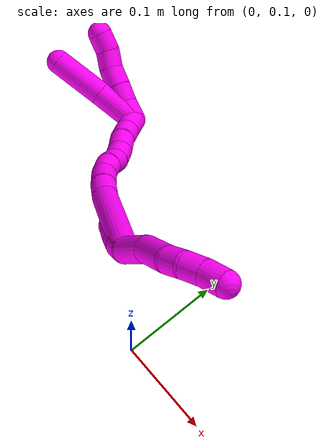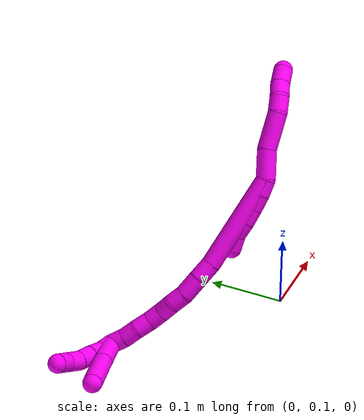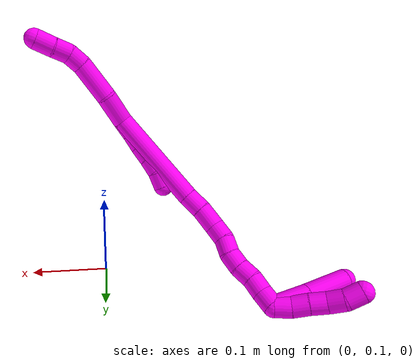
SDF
<sdf version="1.7">
 <world name="default">
  <model name="10">
   <static>0</static>
   <link name="10">
    <collision name="collision-cylinder-e_1_2_8">
     <pose>-0.007656 -0.013312 0.011618 0.853222 -0.408871 -0.18792</pose>
     <geometry><cylinder><radius>0.0125</radius><length>0.038512</length></cylinder></geometry>
     <surface>
      <friction><ode><mu>1.16</mu><mu2>1.16</mu2><slip1>0</slip1><slip2>0</slip2></ode></friction>
      <contact><ode><kp>1e+06</kp><kd>1</kd><max_vel>0</max_vel><min_depth>0.001</min_depth></ode></contact>
     </surface>
    </collision>
    <visual name="visual-cylinder-e_1_2_8">
     <pose>-0.007656 -0.013312 0.011618 0.853222 -0.408871 -0.18792</pose>
     <geometry><cylinder><radius>0.0125</radius><length>0.038512</length></cylinder></geometry>
     <material><ambient>1 0 0.964706 1</ambient></material>
    </visual>
    <collision name="collision-cylinder-e_2_8_9">
     <pose>-0.020607 -0.04155 0.041467 0.686089 -0.221093 -0.079249</pose>
     <geometry><cylinder><radius>0.0125</radius><length>0.048299</length></cylinder></geometry>
     <surface>
      <friction><ode><mu>1.16</mu><mu2>1.16</mu2><slip1>0</slip1><slip2>0</slip2></ode></friction>
      <contact><ode><kp>1e+06</kp><kd>1</kd><max_vel>0</max_vel><min_depth>0.001</min_depth></ode></contact>
     </surface>
    </collision>
    <visual name="visual-cylinder-e_2_8_9">
     <pose>-0.020607 -0.04155 0.041467 0.686089 -0.221093 -0.079249</pose>
     <geometry><cylinder><radius>0.0125</radius><length>0.048299</length></cylinder></geometry>
     <material><ambient>1 0 0.964706 1</ambient></material>
    </visual>
    <collision name="collision-cylinder-e_3_9_10">
     <pose>-0.030943 -0.061287 0.067201 0.570057 -0.514619 -0.1539</pose>
     <geometry><cylinder><radius>0.0125</radius><length>0.020477</length></cylinder></geometry>
     <surface>
      <friction><ode><mu>1.16</mu><mu2>1.16</mu2><slip1>0</slip1><slip2>0</slip2></ode></friction>
      <contact><ode><kp>1e+06</kp><kd>1</kd><max_vel>0</max_vel><min_depth>0.001</min_depth></ode></contact>
     </surface>
    </collision>
    <visual name="visual-cylinder-e_3_9_10">
     <pose>-0.030943 -0.061287 0.067201 0.570057 -0.514619 -0.1539</pose>
     <geometry><cylinder><radius>0.0125</radius><length>0.020477</length></cylinder></geometry>
     <material><ambient>1 0 0.964706 1</ambient></material>
    </visual>
    <collision name="collision-cylinder-e_4_10_11">
     <pose>-0.042735 -0.067901 0.081891 0.245935 -0.738966 -0.095653</pose>
     <geometry><cylinder><radius>0.0125</radius><length>0.020052</length></cylinder></geometry>
     <surface>
      <friction><ode><mu>1.16</mu><mu2>1.16</mu2><slip1>0</slip1><slip2>0</slip2></ode></friction>
      <contact><ode><kp>1e+06</kp><kd>1</kd><max_vel>0</max_vel><min_depth>0.001</min_depth></ode></contact>
     </surface>
    </collision>
    <visual name="visual-cylinder-e_4_10_11">
     <pose>-0.042735 -0.067901 0.081891 0.245935 -0.738966 -0.095653</pose>
     <geometry><cylinder><radius>0.0125</radius><length>0.020052</length></cylinder></geometry>
     <material><ambient>1 0 0.964706 1</ambient></material>
    </visual>
    <collision name="collision-cylinder-e_5_11_6">
     <pose>-0.055856 -0.071959 0.098175 0.242944 -0.596934 -0.075078</pose>
     <geometry><cylinder><radius>0.0125</radius><length>0.02266</length></cylinder></geometry>
     <surface>
      <friction><ode><mu>1.16</mu><mu2>1.16</mu2><slip1>0</slip1><slip2>0</slip2></ode></friction>
      <contact><ode><kp>1e+06</kp><kd>1</kd><max_vel>0</max_vel><min_depth>0.001</min_depth></ode></contact>
     </surface>
    </collision>
    <visual name="visual-cylinder-e_5_11_6">
     <pose>-0.055856 -0.071959 0.098175 0.242944 -0.596934 -0.075078</pose>
     <geometry><cylinder><radius>0.0125</radius><length>0.02266</length></cylinder></geometry>
     <material><ambient>1 0 0.964706 1</ambient></material>
    </visual>
    <collision name="collision-cylinder-e_1_2_12">
     <pose>0.001087 0.006163 -0.0078 -2.47289 0.108876 -0.311182</pose>
     <geometry><cylinder><radius>0.0125</radius><length>0.02</length></cylinder></geometry>
     <surface>
      <friction><ode><mu>1.16</mu><mu2>1.16</mu2><slip1>0</slip1><slip2>0</slip2></ode></friction>
      <contact><ode><kp>1e+06</kp><kd>1</kd><max_vel>0</max_vel><min_depth>0.001</min_depth></ode></contact>
     </surface>
    </collision>
    <visual name="visual-cylinder-e_1_2_12">
     <pose>0.001087 0.006163 -0.0078 -2.47289 0.108876 -0.311182</pose>
     <geometry><cylinder><radius>0.0125</radius><length>0.02</length></cylinder></geometry>
     <material><ambient>1 0 0.964706 1</ambient></material>
    </visual>
    <collision name="collision-cylinder-e_2_12_13">
     <pose>0.001937 0.018568 -0.023409 -2.46725 -0.023647 0.067434</pose>
     <geometry><cylinder><radius>0.0125</radius><length>0.02</length></cylinder></geometry>
     <surface>
      <friction><ode><mu>1.16</mu><mu2>1.16</mu2><slip1>0</slip1><slip2>0</slip2></ode></friction>
      <contact><ode><kp>1e+06</kp><kd>1</kd><max_vel>0</max_vel><min_depth>0.001</min_depth></ode></contact>
     </surface>
    </collision>
    <visual name="visual-cylinder-e_2_12_13">
     <pose>0.001937 0.018568 -0.023409 -2.46725 -0.023647 0.067434</pose>
     <geometry><cylinder><radius>0.0125</radius><length>0.02</length></cylinder></geometry>
     <material><ambient>1 0 0.964706 1</ambient></material>
    </visual>
    <collision name="collision-cylinder-e_3_13_14">
     <pose>0.001471 0.030556 -0.039399 -2.52934 -0.022911 0.07246</pose>
     <geometry><cylinder><radius>0.0125</radius><length>0.02</length></cylinder></geometry>
     <surface>
      <friction><ode><mu>1.16</mu><mu2>1.16</mu2><slip1>0</slip1><slip2>0</slip2></ode></friction>
      <contact><ode><kp>1e+06</kp><kd>1</kd><max_vel>0</max_vel><min_depth>0.001</min_depth></ode></contact>
     </surface>
    </collision>
    <visual name="visual-cylinder-e_3_13_14">
     <pose>0.001471 0.030556 -0.039399 -2.52934 -0.022911 0.07246</pose>
     <geometry><cylinder><radius>0.0125</radius><length>0.02</length></cylinder></geometry>
     <material><ambient>1 0 0.964706 1</ambient></material>
    </visual>
    <collision name="collision-cylinder-e_4_14_15">
     <pose>-9.8e-05 0.042051 -0.055652 -2.52258 -0.134399 0.414865</pose>
     <geometry><cylinder><radius>0.0125</radius><length>0.02</length></cylinder></geometry>
     <surface>
      <friction><ode><mu>1.16</mu><mu2>1.16</mu2><slip1>0</slip1><slip2>0</slip2></ode></friction>
      <contact><ode><kp>1e+06</kp><kd>1</kd><max_vel>0</max_vel><min_depth>0.001</min_depth></ode></contact>
     </surface>
    </collision>
    <visual name="visual-cylinder-e_4_14_15">
     <pose>-9.8e-05 0.042051 -0.055652 -2.52258 -0.134399 0.414865</pose>
     <geometry><cylinder><radius>0.0125</radius><length>0.02</length></cylinder></geometry>
     <material><ambient>1 0 0.964706 1</ambient></material>
    </visual>
    <collision name="collision-cylinder-e_5_15_5">
     <pose>-0.001227 0.055566 -0.07002 -2.25222 0.021053 -0.044176</pose>
     <geometry><cylinder><radius>0.0125</radius><length>0.02</length></cylinder></geometry>
     <surface>
      <friction><ode><mu>1.16</mu><mu2>1.16</mu2><slip1>0</slip1><slip2>0</slip2></ode></friction>
      <contact><ode><kp>1e+06</kp><kd>1</kd><max_vel>0</max_vel><min_depth>0.001</min_depth></ode></contact>
     </surface>
    </collision>
    <visual name="visual-cylinder-e_5_15_5">
     <pose>-0.001227 0.055566 -0.07002 -2.25222 0.021053 -0.044176</pose>
     <geometry><cylinder><radius>0.0125</radius><length>0.02</length></cylinder></geometry>
     <material><ambient>1 0 0.964706 1</ambient></material>
    </visual>
    <collision name="collision-cylinder-e_1_2_16">
     <pose>-0.001298 0.0319 -0.05558 -2.62055 -0.020254 0.075943</pose>
     <geometry><cylinder><radius>0.0125</radius><length>0.128193</length></cylinder></geometry>
     <surface>
      <friction><ode><mu>1.16</mu><mu2>1.16</mu2><slip1>0</slip1><slip2>0</slip2></ode></friction>
      <contact><ode><kp>1e+06</kp><kd>1</kd><max_vel>0</max_vel><min_depth>0.001</min_depth></ode></contact>
     </surface>
    </collision>
    <visual name="visual-cylinder-e_1_2_16">
     <pose>-0.001298 0.0319 -0.05558 -2.62055 -0.020254 0.075943</pose>
     <geometry><cylinder><radius>0.0125</radius><length>0.128193</length></cylinder></geometry>
     <material><ambient>1 0 0.964706 1</ambient></material>
    </visual>
    <collision name="collision-cylinder-e_2_16_17">
     <pose>-0.003882 0.068369 -0.122366 -2.75444 -0.105842 0.527824</pose>
     <geometry><cylinder><radius>0.0125</radius><length>0.024342</length></cylinder></geometry>
     <surface>
      <friction><ode><mu>1.16</mu><mu2>1.16</mu2><slip1>0</slip1><slip2>0</slip2></ode></friction>
      <contact><ode><kp>1e+06</kp><kd>1</kd><max_vel>0</max_vel><min_depth>0.001</min_depth></ode></contact>
     </surface>
    </collision>
    <visual name="visual-cylinder-e_2_16_17">
     <pose>-0.003882 0.068369 -0.122366 -2.75444 -0.105842 0.527824</pose>
     <geometry><cylinder><radius>0.0125</radius><length>0.024342</length></cylinder></geometry>
     <material><ambient>1 0 0.964706 1</ambient></material>
    </visual>
    <collision name="collision-cylinder-e_3_17_18">
     <pose>-0.007651 0.079449 -0.145329 -2.6358 -0.182749 0.681471</pose>
     <geometry><cylinder><radius>0.0125</radius><length>0.027332</length></cylinder></geometry>
     <surface>
      <friction><ode><mu>1.16</mu><mu2>1.16</mu2><slip1>0</slip1><slip2>0</slip2></ode></friction>
      <contact><ode><kp>1e+06</kp><kd>1</kd><max_vel>0</max_vel><min_depth>0.001</min_depth></ode></contact>
     </surface>
    </collision>
    <visual name="visual-cylinder-e_3_17_18">
     <pose>-0.007651 0.079449 -0.145329 -2.6358 -0.182749 0.681471</pose>
     <geometry><cylinder><radius>0.0125</radius><length>0.027332</length></cylinder></geometry>
     <material><ambient>1 0 0.964706 1</ambient></material>
    </visual>
    <collision name="collision-cylinder-e_4_18_19">
     <pose>-0.013914 0.089782 -0.165524 -2.71627 -0.387345 1.47479</pose>
     <geometry><cylinder><radius>0.0125</radius><length>0.02001</length></cylinder></geometry>
     <surface>
      <friction><ode><mu>1.16</mu><mu2>1.16</mu2><slip1>0</slip1><slip2>0</slip2></ode></friction>
      <contact><ode><kp>1e+06</kp><kd>1</kd><max_vel>0</max_vel><min_depth>0.001</min_depth></ode></contact>
     </surface>
    </collision>
    <visual name="visual-cylinder-e_4_18_19">
     <pose>-0.013914 0.089782 -0.165524 -2.71627 -0.387345 1.47479</pose>
     <geometry><cylinder><radius>0.0125</radius><length>0.02001</length></cylinder></geometry>
     <material><ambient>1 0 0.964706 1</ambient></material>
    </visual>
    <collision name="collision-cylinder-e_5_19_20">
     <pose>-0.022634 0.099385 -0.180538 -2.42046 -0.513774 1.21702</pose>
     <geometry><cylinder><radius>0.0125</radius><length>0.020107</length></cylinder></geometry>
     <surface>
      <friction><ode><mu>1.16</mu><mu2>1.16</mu2><slip1>0</slip1><slip2>0</slip2></ode></friction>
      <contact><ode><kp>1e+06</kp><kd>1</kd><max_vel>0</max_vel><min_depth>0.001</min_depth></ode></contact>
     </surface>
    </collision>
    <visual name="visual-cylinder-e_5_19_20">
     <pose>-0.022634 0.099385 -0.180538 -2.42046 -0.513774 1.21702</pose>
     <geometry><cylinder><radius>0.0125</radius><length>0.020107</length></cylinder></geometry>
     <material><ambient>1 0 0.964706 1</ambient></material>
    </visual>
    <collision name="collision-cylinder-e_6_20_21">
     <pose>-0.031371 0.109028 -0.195527 -2.71131 -0.38908 1.46746</pose>
     <geometry><cylinder><radius>0.0125</radius><length>0.02001</length></cylinder></geometry>
     <surface>
      <friction><ode><mu>1.16</mu><mu2>1.16</mu2><slip1>0</slip1><slip2>0</slip2></ode></friction>
      <contact><ode><kp>1e+06</kp><kd>1</kd><max_vel>0</max_vel><min_depth>0.001</min_depth></ode></contact>
     </surface>
    </collision>
    <visual name="visual-cylinder-e_6_20_21">
     <pose>-0.031371 0.109028 -0.195527 -2.71131 -0.38908 1.46746</pose>
     <geometry><cylinder><radius>0.0125</radius><length>0.02001</length></cylinder></geometry>
     <material><ambient>1 0 0.964706 1</ambient></material>
    </visual>
    <collision name="collision-cylinder-e_7_21_22">
     <pose>-0.038469 0.114971 -0.21315 -2.91921 -0.336532 1.97864</pose>
     <geometry><cylinder><radius>0.0125</radius><length>0.020005</length></cylinder></geometry>
     <surface>
      <friction><ode><mu>1.16</mu><mu2>1.16</mu2><slip1>0</slip1><slip2>0</slip2></ode></friction>
      <contact><ode><kp>1e+06</kp><kd>1</kd><max_vel>0</max_vel><min_depth>0.001</min_depth></ode></contact>
     </surface>
    </collision>
    <visual name="visual-cylinder-e_7_21_22">
     <pose>-0.038469 0.114971 -0.21315 -2.91921 -0.336532 1.97864</pose>
     <geometry><cylinder><radius>0.0125</radius><length>0.020005</length></cylinder></geometry>
     <material><ambient>1 0 0.964706 1</ambient></material>
    </visual>
    <collision name="collision-cylinder-e_8_22_23">
     <pose>-0.045982 0.120913 -0.230567 -2.7021 -0.434554 1.55913</pose>
     <geometry><cylinder><radius>0.0125</radius><length>0.020001</length></cylinder></geometry>
     <surface>
      <friction><ode><mu>1.16</mu><mu2>1.16</mu2><slip1>0</slip1><slip2>0</slip2></ode></friction>
      <contact><ode><kp>1e+06</kp><kd>1</kd><max_vel>0</max_vel><min_depth>0.001</min_depth></ode></contact>
     </surface>
    </collision>
    <visual name="visual-cylinder-e_8_22_23">
     <pose>-0.045982 0.120913 -0.230567 -2.7021 -0.434554 1.55913</pose>
     <geometry><cylinder><radius>0.0125</radius><length>0.020001</length></cylinder></geometry>
     <material><ambient>1 0 0.964706 1</ambient></material>
    </visual>
    <collision name="collision-cylinder-e_9_23_1">
     <pose>-0.055364 0.127248 -0.246969 -2.8482 -0.543534 2.16649</pose>
     <geometry><cylinder><radius>0.0125</radius><length>0.02</length></cylinder></geometry>
     <surface>
      <friction><ode><mu>1.16</mu><mu2>1.16</mu2><slip1>0</slip1><slip2>0</slip2></ode></friction>
      <contact><ode><kp>1e+06</kp><kd>1</kd><max_vel>0</max_vel><min_depth>0.001</min_depth></ode></contact>
     </surface>
    </collision>
    <visual name="visual-cylinder-e_9_23_1">
     <pose>-0.055364 0.127248 -0.246969 -2.8482 -0.543534 2.16649</pose>
     <geometry><cylinder><radius>0.0125</radius><length>0.02</length></cylinder></geometry>
     <material><ambient>1 0 0.964706 1</ambient></material>
    </visual>
    <collision name="collision-cylinder-e_1_1_24">
     <pose>-0.046641 0.121716 -0.270802 2.66839 0.66914 1.92877</pose>
     <geometry><cylinder><radius>0.0125</radius><length>0.0448</length></cylinder></geometry>
     <surface>
      <friction><ode><mu>1.16</mu><mu2>1.16</mu2><slip1>0</slip1><slip2>0</slip2></ode></friction>
      <contact><ode><kp>1e+06</kp><kd>1</kd><max_vel>0</max_vel><min_depth>0.001</min_depth></ode></contact>
     </surface>
    </collision>
    <visual name="visual-cylinder-e_1_1_24">
     <pose>-0.046641 0.121716 -0.270802 2.66839 0.66914 1.92877</pose>
     <geometry><cylinder><radius>0.0125</radius><length>0.0448</length></cylinder></geometry>
     <material><ambient>1 0 0.964706 1</ambient></material>
    </visual>
    <collision name="collision-cylinder-e_2_24_4">
     <pose>-0.015161 0.103409 -0.305053 2.63615 0.69077 1.89655</pose>
     <geometry><cylinder><radius>0.0125</radius><length>0.0552</length></cylinder></geometry>
     <surface>
      <friction><ode><mu>1.16</mu><mu2>1.16</mu2><slip1>0</slip1><slip2>0</slip2></ode></friction>
      <contact><ode><kp>1e+06</kp><kd>1</kd><max_vel>0</max_vel><min_depth>0.001</min_depth></ode></contact>
     </surface>
    </collision>
    <visual name="visual-cylinder-e_2_24_4">
     <pose>-0.015161 0.103409 -0.305053 2.63615 0.69077 1.89655</pose>
     <geometry><cylinder><radius>0.0125</radius><length>0.0552</length></cylinder></geometry>
     <material><ambient>1 0 0.964706 1</ambient></material>
    </visual>
    <collision name="collision-cylinder-e_1_1_25">
     <pose>-0.05853 0.126598 -0.264448 2.8169 0.201967 1.10805</pose>
     <geometry><cylinder><radius>0.0125</radius><length>0.02</length></cylinder></geometry>
     <surface>
      <friction><ode><mu>1.16</mu><mu2>1.16</mu2><slip1>0</slip1><slip2>0</slip2></ode></friction>
      <contact><ode><kp>1e+06</kp><kd>1</kd><max_vel>0</max_vel><min_depth>0.001</min_depth></ode></contact>
     </surface>
    </collision>
    <visual name="visual-cylinder-e_1_1_25">
     <pose>-0.05853 0.126598 -0.264448 2.8169 0.201967 1.10805</pose>
     <geometry><cylinder><radius>0.0125</radius><length>0.02</length></cylinder></geometry>
     <material><ambient>1 0 0.964706 1</ambient></material>
    </visual>
    <collision name="collision-cylinder-e_2_25_26">
     <pose>-0.05506 0.118332 -0.282184 2.59517 0.146907 0.513604</pose>
     <geometry><cylinder><radius>0.0125</radius><length>0.02</length></cylinder></geometry>
     <surface>
      <friction><ode><mu>1.16</mu><mu2>1.16</mu2><slip1>0</slip1><slip2>0</slip2></ode></friction>
      <contact><ode><kp>1e+06</kp><kd>1</kd><max_vel>0</max_vel><min_depth>0.001</min_depth></ode></contact>
     </surface>
    </collision>
    <visual name="visual-cylinder-e_2_25_26">
     <pose>-0.05506 0.118332 -0.282184 2.59517 0.146907 0.513604</pose>
     <geometry><cylinder><radius>0.0125</radius><length>0.02</length></cylinder></geometry>
     <material><ambient>1 0 0.964706 1</ambient></material>
    </visual>
    <collision name="collision-cylinder-e_3_26_27">
     <pose>-0.051896 0.108851 -0.299483 2.68539 0.170877 0.706907</pose>
     <geometry><cylinder><radius>0.0125</radius><length>0.02</length></cylinder></geometry>
     <surface>
      <friction><ode><mu>1.16</mu><mu2>1.16</mu2><slip1>0</slip1><slip2>0</slip2></ode></friction>
      <contact><ode><kp>1e+06</kp><kd>1</kd><max_vel>0</max_vel><min_depth>0.001</min_depth></ode></contact>
     </surface>
    </collision>
    <visual name="visual-cylinder-e_3_26_27">
     <pose>-0.051896 0.108851 -0.299483 2.68539 0.170877 0.706907</pose>
     <geometry><cylinder><radius>0.0125</radius><length>0.02</length></cylinder></geometry>
     <material><ambient>1 0 0.964706 1</ambient></material>
    </visual>
    <collision name="collision-cylinder-e_4_27_28">
     <pose>-0.050453 0.098557 -0.316361 2.50383 -0.025757 -0.077982</pose>
     <geometry><cylinder><radius>0.0125</radius><length>0.02</length></cylinder></geometry>
     <surface>
      <friction><ode><mu>1.16</mu><mu2>1.16</mu2><slip1>0</slip1><slip2>0</slip2></ode></friction>
      <contact><ode><kp>1e+06</kp><kd>1</kd><max_vel>0</max_vel><min_depth>0.001</min_depth></ode></contact>
     </surface>
    </collision>
    <visual name="visual-cylinder-e_4_27_28">
     <pose>-0.050453 0.098557 -0.316361 2.50383 -0.025757 -0.077982</pose>
     <geometry><cylinder><radius>0.0125</radius><length>0.02</length></cylinder></geometry>
     <material><ambient>1 0 0.964706 1</ambient></material>
    </visual>
    <collision name="collision-cylinder-e_5_28_3">
     <pose>-0.048432 0.085586 -0.331141 2.33652 0.2299 0.529601</pose>
     <geometry><cylinder><radius>0.0125</radius><length>0.02</length></cylinder></geometry>
     <surface>
      <friction><ode><mu>1.16</mu><mu2>1.16</mu2><slip1>0</slip1><slip2>0</slip2></ode></friction>
      <contact><ode><kp>1e+06</kp><kd>1</kd><max_vel>0</max_vel><min_depth>0.001</min_depth></ode></contact>
     </surface>
    </collision>
    <visual name="visual-cylinder-e_5_28_3">
     <pose>-0.048432 0.085586 -0.331141 2.33652 0.2299 0.529601</pose>
     <geometry><cylinder><radius>0.0125</radius><length>0.02</length></cylinder></geometry>
     <material><ambient>1 0 0.964706 1</ambient></material>
    </visual>
    <collision name="collision-sphere-3">
     <pose>-0.046153 0.078567 -0.337889 0 -0 0</pose>
     <geometry><sphere><radius>0.0125</radius></sphere></geometry>
     <surface>
      <friction><ode><mu>1.16</mu><mu2>1.16</mu2><slip1>0</slip1><slip2>0</slip2></ode></friction>
      <contact><ode><kp>1e+06</kp><kd>1</kd><max_vel>0</max_vel><min_depth>0.001</min_depth></ode></contact>
     </surface>
    </collision>
    <visual name="visual-sphere-3">
     <pose>-0.046153 0.078567 -0.337889 0 -0 0</pose>
     <geometry><sphere><radius>0.0125</radius></sphere></geometry>
     <material><ambient>1 0 0.964706 1</ambient></material>
    </visual>
    <collision name="collision-sphere-28">
     <pose>-0.05071 0.092605 -0.324393 0 -0 0</pose>
     <geometry><sphere><radius>0.0125</radius></sphere></geometry>
     <surface>
      <friction><ode><mu>1.16</mu><mu2>1.16</mu2><slip1>0</slip1><slip2>0</slip2></ode></friction>
      <contact><ode><kp>1e+06</kp><kd>1</kd><max_vel>0</max_vel><min_depth>0.001</min_depth></ode></contact>
     </surface>
    </collision>
    <visual name="visual-sphere-28">
     <pose>-0.05071 0.092605 -0.324393 0 -0 0</pose>
     <geometry><sphere><radius>0.0125</radius></sphere></geometry>
     <material><ambient>1 0 0.964706 1</ambient></material>
    </visual>
    <collision name="collision-sphere-27">
     <pose>-0.050195 0.104509 -0.308329 0 -0 0</pose>
     <geometry><sphere><radius>0.0125</radius></sphere></geometry>
     <surface>
      <friction><ode><mu>1.16</mu><mu2>1.16</mu2><slip1>0</slip1><slip2>0</slip2></ode></friction>
      <contact><ode><kp>1e+06</kp><kd>1</kd><max_vel>0</max_vel><min_depth>0.001</min_depth></ode></contact>
     </surface>
    </collision>
    <visual name="visual-sphere-27">
     <pose>-0.050195 0.104509 -0.308329 0 -0 0</pose>
     <geometry><sphere><radius>0.0125</radius></sphere></geometry>
     <material><ambient>1 0 0.964706 1</ambient></material>
    </visual>
    <collision name="collision-sphere-26">
     <pose>-0.053596 0.113192 -0.290636 0 -0 0</pose>
     <geometry><sphere><radius>0.0125</radius></sphere></geometry>
     <surface>
      <friction><ode><mu>1.16</mu><mu2>1.16</mu2><slip1>0</slip1><slip2>0</slip2></ode></friction>
      <contact><ode><kp>1e+06</kp><kd>1</kd><max_vel>0</max_vel><min_depth>0.001</min_depth></ode></contact>
     </surface>
    </collision>
    <visual name="visual-sphere-26">
     <pose>-0.053596 0.113192 -0.290636 0 -0 0</pose>
     <geometry><sphere><radius>0.0125</radius></sphere></geometry>
     <material><ambient>1 0 0.964706 1</ambient></material>
    </visual>
    <collision name="collision-sphere-25">
     <pose>-0.056524 0.123473 -0.273732 0 -0 0</pose>
     <geometry><sphere><radius>0.0125</radius></sphere></geometry>
     <surface>
      <friction><ode><mu>1.16</mu><mu2>1.16</mu2><slip1>0</slip1><slip2>0</slip2></ode></friction>
      <contact><ode><kp>1e+06</kp><kd>1</kd><max_vel>0</max_vel><min_depth>0.001</min_depth></ode></contact>
     </surface>
    </collision>
    <visual name="visual-sphere-25">
     <pose>-0.056524 0.123473 -0.273732 0 -0 0</pose>
     <geometry><sphere><radius>0.0125</radius></sphere></geometry>
     <material><ambient>1 0 0.964706 1</ambient></material>
    </visual>
    <collision name="collision-sphere-4">
     <pose>0.002424 0.093109 -0.323666 0 -0 0</pose>
     <geometry><sphere><radius>0.0125</radius></sphere></geometry>
     <surface>
      <friction><ode><mu>1.16</mu><mu2>1.16</mu2><slip1>0</slip1><slip2>0</slip2></ode></friction>
      <contact><ode><kp>1e+06</kp><kd>1</kd><max_vel>0</max_vel><min_depth>0.001</min_depth></ode></contact>
     </surface>
    </collision>
    <visual name="visual-sphere-4">
     <pose>0.002424 0.093109 -0.323666 0 -0 0</pose>
     <geometry><sphere><radius>0.0125</radius></sphere></geometry>
     <material><ambient>1 0 0.964706 1</ambient></material>
    </visual>
    <collision name="collision-sphere-24">
     <pose>-0.032746 0.113709 -0.286441 0 -0 0</pose>
     <geometry><sphere><radius>0.0125</radius></sphere></geometry>
     <surface>
      <friction><ode><mu>1.16</mu><mu2>1.16</mu2><slip1>0</slip1><slip2>0</slip2></ode></friction>
      <contact><ode><kp>1e+06</kp><kd>1</kd><max_vel>0</max_vel><min_depth>0.001</min_depth></ode></contact>
     </surface>
    </collision>
    <visual name="visual-sphere-24">
     <pose>-0.032746 0.113709 -0.286441 0 -0 0</pose>
     <geometry><sphere><radius>0.0125</radius></sphere></geometry>
     <material><ambient>1 0 0.964706 1</ambient></material>
    </visual>
    <collision name="collision-sphere-1">
     <pose>-0.060536 0.129723 -0.255163 0 -0 0</pose>
     <geometry><sphere><radius>0.0125</radius></sphere></geometry>
     <surface>
      <friction><ode><mu>1.16</mu><mu2>1.16</mu2><slip1>0</slip1><slip2>0</slip2></ode></friction>
      <contact><ode><kp>1e+06</kp><kd>1</kd><max_vel>0</max_vel><min_depth>0.001</min_depth></ode></contact>
     </surface>
    </collision>
    <visual name="visual-sphere-1">
     <pose>-0.060536 0.129723 -0.255163 0 -0 0</pose>
     <geometry><sphere><radius>0.0125</radius></sphere></geometry>
     <material><ambient>1 0 0.964706 1</ambient></material>
    </visual>
    <collision name="collision-sphere-23">
     <pose>-0.050192 0.124773 -0.238776 0 -0 0</pose>
     <geometry><sphere><radius>0.0125</radius></sphere></geometry>
     <surface>
      <friction><ode><mu>1.16</mu><mu2>1.16</mu2><slip1>0</slip1><slip2>0</slip2></ode></friction>
      <contact><ode><kp>1e+06</kp><kd>1</kd><max_vel>0</max_vel><min_depth>0.001</min_depth></ode></contact>
     </surface>
    </collision>
    <visual name="visual-sphere-23">
     <pose>-0.050192 0.124773 -0.238776 0 -0 0</pose>
     <geometry><sphere><radius>0.0125</radius></sphere></geometry>
     <material><ambient>1 0 0.964706 1</ambient></material>
    </visual>
    <collision name="collision-sphere-22">
     <pose>-0.041772 0.117054 -0.222359 0 -0 0</pose>
     <geometry><sphere><radius>0.0125</radius></sphere></geometry>
     <surface>
      <friction><ode><mu>1.16</mu><mu2>1.16</mu2><slip1>0</slip1><slip2>0</slip2></ode></friction>
      <contact><ode><kp>1e+06</kp><kd>1</kd><max_vel>0</max_vel><min_depth>0.001</min_depth></ode></contact>
     </surface>
    </collision>
    <visual name="visual-sphere-22">
     <pose>-0.041772 0.117054 -0.222359 0 -0 0</pose>
     <geometry><sphere><radius>0.0125</radius></sphere></geometry>
     <material><ambient>1 0 0.964706 1</ambient></material>
    </visual>
    <collision name="collision-sphere-21">
     <pose>-0.035166 0.112889 -0.203941 0 -0 0</pose>
     <geometry><sphere><radius>0.0125</radius></sphere></geometry>
     <surface>
      <friction><ode><mu>1.16</mu><mu2>1.16</mu2><slip1>0</slip1><slip2>0</slip2></ode></friction>
      <contact><ode><kp>1e+06</kp><kd>1</kd><max_vel>0</max_vel><min_depth>0.001</min_depth></ode></contact>
     </surface>
    </collision>
    <visual name="visual-sphere-21">
     <pose>-0.035166 0.112889 -0.203941 0 -0 0</pose>
     <geometry><sphere><radius>0.0125</radius></sphere></geometry>
     <material><ambient>1 0 0.964706 1</ambient></material>
    </visual>
    <collision name="collision-sphere-6">
     <pose>-0.062225 -0.074214 0.10727 0 -0 0</pose>
     <geometry><sphere><radius>0.0125</radius></sphere></geometry>
     <surface>
      <friction><ode><mu>1.16</mu><mu2>1.16</mu2><slip1>0</slip1><slip2>0</slip2></ode></friction>
      <contact><ode><kp>1e+06</kp><kd>1</kd><max_vel>0</max_vel><min_depth>0.001</min_depth></ode></contact>
     </surface>
    </collision>
    <visual name="visual-sphere-6">
     <pose>-0.062225 -0.074214 0.10727 0 -0 0</pose>
     <geometry><sphere><radius>0.0125</radius></sphere></geometry>
     <material><ambient>1 0 0.964706 1</ambient></material>
    </visual>
    <collision name="collision-sphere-11">
     <pose>-0.049487 -0.069705 0.089079 0 -0 0</pose>
     <geometry><sphere><radius>0.0125</radius></sphere></geometry>
     <surface>
      <friction><ode><mu>1.16</mu><mu2>1.16</mu2><slip1>0</slip1><slip2>0</slip2></ode></friction>
      <contact><ode><kp>1e+06</kp><kd>1</kd><max_vel>0</max_vel><min_depth>0.001</min_depth></ode></contact>
     </surface>
    </collision>
    <visual name="visual-sphere-11">
     <pose>-0.049487 -0.069705 0.089079 0 -0 0</pose>
     <geometry><sphere><radius>0.0125</radius></sphere></geometry>
     <material><ambient>1 0 0.964706 1</ambient></material>
    </visual>
    <collision name="collision-sphere-10">
     <pose>-0.035982 -0.066097 0.074704 0 -0 0</pose>
     <geometry><sphere><radius>0.0125</radius></sphere></geometry>
     <surface>
      <friction><ode><mu>1.16</mu><mu2>1.16</mu2><slip1>0</slip1><slip2>0</slip2></ode></friction>
      <contact><ode><kp>1e+06</kp><kd>1</kd><max_vel>0</max_vel><min_depth>0.001</min_depth></ode></contact>
     </surface>
    </collision>
    <visual name="visual-sphere-10">
     <pose>-0.035982 -0.066097 0.074704 0 -0 0</pose>
     <geometry><sphere><radius>0.0125</radius></sphere></geometry>
     <material><ambient>1 0 0.964706 1</ambient></material>
    </visual>
    <collision name="collision-sphere-9">
     <pose>-0.025903 -0.056477 0.059697 0 -0 0</pose>
     <geometry><sphere><radius>0.0125</radius></sphere></geometry>
     <surface>
      <friction><ode><mu>1.16</mu><mu2>1.16</mu2><slip1>0</slip1><slip2>0</slip2></ode></friction>
      <contact><ode><kp>1e+06</kp><kd>1</kd><max_vel>0</max_vel><min_depth>0.001</min_depth></ode></contact>
     </surface>
    </collision>
    <visual name="visual-sphere-9">
     <pose>-0.025903 -0.056477 0.059697 0 -0 0</pose>
     <geometry><sphere><radius>0.0125</radius></sphere></geometry>
     <material><ambient>1 0 0.964706 1</ambient></material>
    </visual>
    <collision name="collision-sphere-2">
     <geometry><sphere><radius>0.0125</radius></sphere></geometry>
     <surface>
      <friction><ode><mu>1.16</mu><mu2>1.16</mu2><slip1>0</slip1><slip2>0</slip2></ode></friction>
      <contact><ode><kp>1e+06</kp><kd>1</kd><max_vel>0</max_vel><min_depth>0.001</min_depth></ode></contact>
     </surface>
    </collision>
    <visual name="visual-sphere-2">
     <geometry><sphere><radius>0.0125</radius></sphere></geometry>
     <material><ambient>1 0 0.964706 1</ambient></material>
    </visual>
    <collision name="collision-sphere-19">
     <pose>-0.017693 0.093605 -0.173962 0 -0 0</pose>
     <geometry><sphere><radius>0.0125</radius></sphere></geometry>
     <surface>
      <friction><ode><mu>1.16</mu><mu2>1.16</mu2><slip1>0</slip1><slip2>0</slip2></ode></friction>
      <contact><ode><kp>1e+06</kp><kd>1</kd><max_vel>0</max_vel><min_depth>0.001</min_depth></ode></contact>
     </surface>
    </collision>
    <visual name="visual-sphere-19">
     <pose>-0.017693 0.093605 -0.173962 0 -0 0</pose>
     <geometry><sphere><radius>0.0125</radius></sphere></geometry>
     <material><ambient>1 0 0.964706 1</ambient></material>
    </visual>
    <collision name="collision-sphere-8">
     <pose>-0.015311 -0.026623 0.023236 0 -0 0</pose>
     <geometry><sphere><radius>0.0125</radius></sphere></geometry>
     <surface>
      <friction><ode><mu>1.16</mu><mu2>1.16</mu2><slip1>0</slip1><slip2>0</slip2></ode></friction>
      <contact><ode><kp>1e+06</kp><kd>1</kd><max_vel>0</max_vel><min_depth>0.001</min_depth></ode></contact>
     </surface>
    </collision>
    <visual name="visual-sphere-8">
     <pose>-0.015311 -0.026623 0.023236 0 -0 0</pose>
     <geometry><sphere><radius>0.0125</radius></sphere></geometry>
     <material><ambient>1 0 0.964706 1</ambient></material>
    </visual>
    <collision name="collision-sphere-12">
     <pose>0.002173 0.012326 -0.0156 0 -0 0</pose>
     <geometry><sphere><radius>0.0125</radius></sphere></geometry>
     <surface>
      <friction><ode><mu>1.16</mu><mu2>1.16</mu2><slip1>0</slip1><slip2>0</slip2></ode></friction>
      <contact><ode><kp>1e+06</kp><kd>1</kd><max_vel>0</max_vel><min_depth>0.001</min_depth></ode></contact>
     </surface>
    </collision>
    <visual name="visual-sphere-12">
     <pose>0.002173 0.012326 -0.0156 0 -0 0</pose>
     <geometry><sphere><radius>0.0125</radius></sphere></geometry>
     <material><ambient>1 0 0.964706 1</ambient></material>
    </visual>
    <collision name="collision-sphere-13">
     <pose>0.0017 0.02481 -0.031218 0 -0 0</pose>
     <geometry><sphere><radius>0.0125</radius></sphere></geometry>
     <surface>
      <friction><ode><mu>1.16</mu><mu2>1.16</mu2><slip1>0</slip1><slip2>0</slip2></ode></friction>
      <contact><ode><kp>1e+06</kp><kd>1</kd><max_vel>0</max_vel><min_depth>0.001</min_depth></ode></contact>
     </surface>
    </collision>
    <visual name="visual-sphere-13">
     <pose>0.0017 0.02481 -0.031218 0 -0 0</pose>
     <geometry><sphere><radius>0.0125</radius></sphere></geometry>
     <material><ambient>1 0 0.964706 1</ambient></material>
    </visual>
    <collision name="collision-sphere-14">
     <pose>0.001242 0.036301 -0.04758 0 -0 0</pose>
     <geometry><sphere><radius>0.0125</radius></sphere></geometry>
     <surface>
      <friction><ode><mu>1.16</mu><mu2>1.16</mu2><slip1>0</slip1><slip2>0</slip2></ode></friction>
      <contact><ode><kp>1e+06</kp><kd>1</kd><max_vel>0</max_vel><min_depth>0.001</min_depth></ode></contact>
     </surface>
    </collision>
    <visual name="visual-sphere-14">
     <pose>0.001242 0.036301 -0.04758 0 -0 0</pose>
     <geometry><sphere><radius>0.0125</radius></sphere></geometry>
     <material><ambient>1 0 0.964706 1</ambient></material>
    </visual>
    <collision name="collision-sphere-15">
     <pose>-0.001438 0.047801 -0.063723 0 -0 0</pose>
     <geometry><sphere><radius>0.0125</radius></sphere></geometry>
     <surface>
      <friction><ode><mu>1.16</mu><mu2>1.16</mu2><slip1>0</slip1><slip2>0</slip2></ode></friction>
      <contact><ode><kp>1e+06</kp><kd>1</kd><max_vel>0</max_vel><min_depth>0.001</min_depth></ode></contact>
     </surface>
    </collision>
    <visual name="visual-sphere-15">
     <pose>-0.001438 0.047801 -0.063723 0 -0 0</pose>
     <geometry><sphere><radius>0.0125</radius></sphere></geometry>
     <material><ambient>1 0 0.964706 1</ambient></material>
    </visual>
    <collision name="collision-sphere-5">
     <pose>-0.001017 0.063331 -0.076318 0 -0 0</pose>
     <geometry><sphere><radius>0.0125</radius></sphere></geometry>
     <surface>
      <friction><ode><mu>1.16</mu><mu2>1.16</mu2><slip1>0</slip1><slip2>0</slip2></ode></friction>
      <contact><ode><kp>1e+06</kp><kd>1</kd><max_vel>0</max_vel><min_depth>0.001</min_depth></ode></contact>
     </surface>
    </collision>
    <visual name="visual-sphere-5">
     <pose>-0.001017 0.063331 -0.076318 0 -0 0</pose>
     <geometry><sphere><radius>0.0125</radius></sphere></geometry>
     <material><ambient>1 0 0.964706 1</ambient></material>
    </visual>
    <collision name="collision-sphere-16">
     <pose>-0.002596 0.063799 -0.111159 0 -0 0</pose>
     <geometry><sphere><radius>0.0125</radius></sphere></geometry>
     <surface>
      <friction><ode><mu>1.16</mu><mu2>1.16</mu2><slip1>0</slip1><slip2>0</slip2></ode></friction>
      <contact><ode><kp>1e+06</kp><kd>1</kd><max_vel>0</max_vel><min_depth>0.001</min_depth></ode></contact>
     </surface>
    </collision>
    <visual name="visual-sphere-16">
     <pose>-0.002596 0.063799 -0.111159 0 -0 0</pose>
     <geometry><sphere><radius>0.0125</radius></sphere></geometry>
     <material><ambient>1 0 0.964706 1</ambient></material>
    </visual>
    <collision name="collision-sphere-17">
     <pose>-0.005168 0.072938 -0.133574 0 -0 0</pose>
     <geometry><sphere><radius>0.0125</radius></sphere></geometry>
     <surface>
      <friction><ode><mu>1.16</mu><mu2>1.16</mu2><slip1>0</slip1><slip2>0</slip2></ode></friction>
      <contact><ode><kp>1e+06</kp><kd>1</kd><max_vel>0</max_vel><min_depth>0.001</min_depth></ode></contact>
     </surface>
    </collision>
    <visual name="visual-sphere-17">
     <pose>-0.005168 0.072938 -0.133574 0 -0 0</pose>
     <geometry><sphere><radius>0.0125</radius></sphere></geometry>
     <material><ambient>1 0 0.964706 1</ambient></material>
    </visual>
    <collision name="collision-sphere-18">
     <pose>-0.010135 0.08596 -0.157085 0 -0 0</pose>
     <geometry><sphere><radius>0.0125</radius></sphere></geometry>
     <surface>
      <friction><ode><mu>1.16</mu><mu2>1.16</mu2><slip1>0</slip1><slip2>0</slip2></ode></friction>
      <contact><ode><kp>1e+06</kp><kd>1</kd><max_vel>0</max_vel><min_depth>0.001</min_depth></ode></contact>
     </surface>
    </collision>
    <visual name="visual-sphere-18">
     <pose>-0.010135 0.08596 -0.157085 0 -0 0</pose>
     <geometry><sphere><radius>0.0125</radius></sphere></geometry>
     <material><ambient>1 0 0.964706 1</ambient></material>
    </visual>
    <collision name="collision-sphere-20">
     <pose>-0.027575 0.105166 -0.187114 0 -0 0</pose>
     <geometry><sphere><radius>0.0125</radius></sphere></geometry>
     <surface>
      <friction><ode><mu>1.16</mu><mu2>1.16</mu2><slip1>0</slip1><slip2>0</slip2></ode></friction>
      <contact><ode><kp>1e+06</kp><kd>1</kd><max_vel>0</max_vel><min_depth>0.001</min_depth></ode></contact>
     </surface>
    </collision>
    <visual name="visual-sphere-20">
     <pose>-0.027575 0.105166 -0.187114 0 -0 0</pose>
     <geometry><sphere><radius>0.0125</radius></sphere></geometry>
     <material><ambient>1 0 0.964706 1</ambient></material>
    </visual>
    <inertial>
     <pose>-0.022433 0.052501 -0.125095 0 -0 0</pose>
     <mass>0.75</mass>
     <inertia>
      <ixx>0.00025</ixx>
      <ixy>0</ixy>
      <ixz>0</ixz>
      <iyy>-8.8e-05</iyy>
      <iyz>0</iyz>
      <izz>-0.000105</izz>
     </inertia>
    </inertial>
   </link>
   <pose>-0.027478 0.115587 0.209677 -1.28218 -0.015159 -2.02403</pose>
  </model>
 </world>
</sdf>
